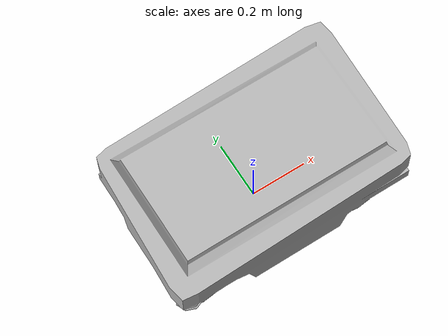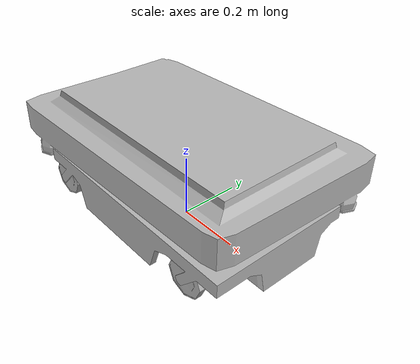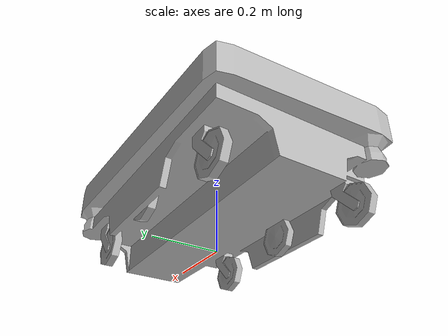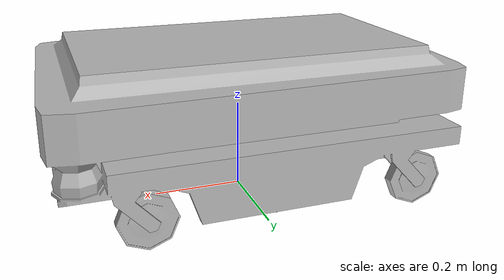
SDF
<?xml version="1.0"?>

<sdf version="1.6">
  <model name='MiR100'>

    <!-- TODO(MXG): Find actual physical properties for MiR instead of duplicating Sesto's -->
    <plugin name="slotcar" filename="libslotcar.so">

      <!-- Forward / Backward -->

      <!-- Official Sesto limit: 0.7 -->
      <nominal_drive_speed>
        0.7
      </nominal_drive_speed>

      <nominal_drive_acceleration>
        0.5
      </nominal_drive_acceleration>

      <!-- Theoretical no-slip limit with current suspension: 0.8 -->
      <!-- Official Sesto limit: 0.5 -->
      <max_drive_acceleration>
        0.75
      </max_drive_acceleration>

      <!-- Turning -->

      <!-- Official Sesto limit: 0.3 -->
      <nominal_turn_speed>
        0.3
      </nominal_turn_speed>

      <nominal_turn_acceleration>
        1.5
      </nominal_turn_acceleration>

      <!-- Theoretical no-slip limit with current suspension: 2.166666... -->
      <!-- Official Sesto limit: 0.25 -->
      <max_turn_acceleration>
        2.0
      </max_turn_acceleration>

      <!-- Stop distance and radius to allow MIR to pass through LF001 -->
      <stop_distance>0.70</stop_distance>
      <stop_radius>0.70</stop_radius>
    </plugin>

    <link name="body">
      <pose>0 0 0 0 0 0</pose>

      <inertial>
        <pose>0 0 0.43294142 0 0 0</pose>
        <mass>244.816489</mass>
        <inertia>
          <ixx>29.0695006</ixx>
          <iyy>26.0429852</iyy>
          <izz>23.0523441</izz>
        </inertia>
      </inertial>

      <visual name="body">
        <geometry>
          <mesh><uri>model://MiR100/meshes/body.obj</uri></mesh>
        </geometry>
      </visual>
      <collision name="body">
        <geometry>
          <mesh><uri>model://MiR100/meshes/body.obj</uri></mesh>
        </geometry>
      </collision>

      <visual name="WheelLeftFront">
        <pose>0.262 0.220 0.061 0 0 0</pose>
        <geometry>
          <mesh>
            <uri>model://MiR100/meshes/WheelMain.obj</uri>
          </mesh>
        </geometry>
      </visual>
      <collision name="front_caster_left">
        <pose>.27 .25 0.05 0 0 0</pose>
        <geometry>
          <sphere><radius>0.05</radius></sphere>
        </geometry>
        <surface>
          <friction>
            <torsional>
              <coefficient>0.0</coefficient>
            </torsional>
            <ode>
              <mu>0.0</mu>
              <mu2>0.0</mu2>
            </ode>
            <bullet>
              <friction>0.0</friction>
              <friction2>0.0</friction2>
              <rolling_friction>0.0</rolling_friction>
            </bullet>
          </friction>
        </surface>
      </collision>

      <visual name="WheelLeftBack">
        <pose>-0.334 0.220 0.061 0 0 0</pose>
        <geometry>
          <mesh>
            <uri>model://MiR100/meshes/WheelMain.obj</uri>
          </mesh>
        </geometry>
      </visual>
      <collision name="back_caster_left">
        <pose>-.34 .25 0.05 0 0 0</pose>
        <geometry>
          <sphere><radius>0.05</radius></sphere>
        </geometry>
        <surface>
          <friction>
            <torsional>
              <coefficient>0.0</coefficient>
            </torsional>
            <ode>
              <mu>0.0</mu>
              <mu2>0.0</mu2>
            </ode>
            <bullet>
              <friction>0.0</friction>
              <friction2>0.0</friction2>
              <rolling_friction>0.0</rolling_friction>
            </bullet>
          </friction>
        </surface>
      </collision>

      <visual name="WheelRightFront">
        <pose>0.262 -0.217 0.061 0 0 0</pose>
        <geometry>
          <mesh>
            <uri>model://MiR100/meshes/WheelMain.obj</uri>
          </mesh>
        </geometry>
      </visual>
      <collision name="front_caster_right">
        <pose>.27 -.25 0.05 0 0 0</pose>
        <geometry>
          <sphere><radius>0.05</radius></sphere>
        </geometry>
        <surface>
          <friction>
            <torsional>
              <coefficient>0.0</coefficient>
            </torsional>
            <ode>
              <mu>0.0</mu>
              <mu2>0.0</mu2>
            </ode>
            <bullet>
              <friction>0.0</friction>
              <friction2>0.0</friction2>
              <rolling_friction>0.0</rolling_friction>
            </bullet>
          </friction>
        </surface>
      </collision>

      <visual name="WheelRightBack">
        <pose>-0.334 -0.217 0.061 0 0 0</pose>
        <geometry>
          <mesh>
            <uri>model://MiR100/meshes/WheelMain.obj</uri>
          </mesh>
        </geometry>
      </visual>
      <collision name="back_caster_right">
        <pose>-.34 -.25 0.05 0 0 0</pose>
        <geometry>
          <sphere><radius>0.05</radius></sphere>
        </geometry>
        <surface>
          <friction>
            <torsional>
              <coefficient>0.0</coefficient>
            </torsional>
            <ode>
              <mu>0.0</mu>
              <mu2>0.0</mu2>
            </ode>
            <bullet>
              <friction>0.0</friction>
              <friction2>0.0</friction2>
              <rolling_friction>0.0</rolling_friction>
            </bullet>
          </friction>
        </surface>
      </collision>
    </link>

    <link name="suspension_tire_left">
      <!-- This is a dummy link that's used to connect a suspension (prismatic
           joint) to the tire axis (revolute joint) -->
      <pose>0 0.26 0.10 0 0 0</pose>
      <inertial>
        <mass>1.00</mass>
        <inertia>
          <ixx>1.00</ixx>
          <iyy>1.00</iyy>
          <izz>1.00</izz>
        </inertia>
      </inertial>
    </link>

    <joint name="joint_suspension_tire_left" type="prismatic">
      <parent>body</parent>
      <child>suspension_tire_left</child>
      <axis>
        <xyz>0 0 1</xyz>
        <dynamics>
          <damping>500</damping>
          <spring_reference>-0.09</spring_reference>
          <spring_stiffness>2000</spring_stiffness>
        </dynamics>
      </axis>
      <physics>
        <ode>
          <implicit_spring_damper>true</implicit_spring_damper>
        </ode>
      </physics>
    </joint>

    <link name="tire_left">
      <pose>0 0.26 0.10 0 0 0</pose>

      <inertial>
        <pose>0 0 0 0 0 0</pose>
        <mass>5.0</mass>
        <inertia>
          <ixx>0.757897446874</ixx>
          <iyy>1.302975553365</iyy>
          <izz>0.757897446874</izz>
        </inertia>
      </inertial>

      <visual name="WheelSideLeft">
        <pose>0.0 -0.032 0.0 0 0 0</pose>
        <geometry>
          <mesh>
            <uri>model://MiR100/meshes/WheelSide.obj</uri>
          </mesh>
        </geometry>
      </visual>
      <collision name="tire_left">
        <geometry>
          <sphere><radius>0.06137</radius></sphere>
        </geometry>
        <surface>
          <contact>
            <ode>
              <kp>10000000.0</kp>
              <kd>1.0</kd>
            </ode>
          </contact>
        </surface>
      </collision>
    </link>

    <joint name="joint_tire_left" type="revolute">
      <parent>suspension_tire_left</parent>
      <child>tire_left</child>
      <axis>
        <xyz>0 1 0</xyz>
      </axis>
    </joint>

    <link name="suspension_tire_right">
      <!-- This is a dummy link that's used to connect a suspension (prismatic
           joint) to the tire axis (revolute joint) -->
      <pose>0 -0.26 0.10 0 0 0</pose>
      <inertial>
        <mass>1.00</mass>
        <inertia>
          <ixx>1.00</ixx>
          <iyy>1.00</iyy>
          <izz>1.00</izz>
        </inertia>
      </inertial>
    </link>

    <joint name="joint_suspension_tire_right" type="prismatic">
      <parent>body</parent>
      <child>suspension_tire_right</child>
      <axis>
        <xyz>0 0 1</xyz>
        <dynamics>
          <damping>500</damping>
          <spring_reference>-0.09</spring_reference>
          <spring_stiffness>2000</spring_stiffness>
        </dynamics>
      </axis>
      <physics>
        <ode>
          <implicit_spring_damper>true</implicit_spring_damper>
        </ode>
      </physics>
    </joint>

    <link name="tire_right">
      <pose>0 -0.26 0.10 0 0 0</pose>

      <inertial>
        <pose>0 0 0 0 0 0</pose>
        <mass>5.0</mass>
        <inertia>
          <ixx>0.757897446874</ixx>
          <iyy>1.302975553365</iyy>
          <izz>0.757897446874</izz>
        </inertia>
      </inertial>

      <visual name="WheelSideRight">
        <pose>0.0 0.032 0.0 0 0 0</pose>
        <geometry>
          <mesh>
            <uri>model://MiR100/meshes/WheelSide.obj</uri>
          </mesh>
        </geometry>
      </visual>
      <collision name="tire_right">
        <geometry>
          <sphere><radius>0.06137</radius></sphere>
        </geometry>
        <surface>
          <contact>
            <ode>
              <kp>10000000.0</kp>
              <kd>1.0</kd>
            </ode>
          </contact>
        </surface>
      </collision>
    </link>

    <joint name="joint_tire_right" type="revolute">
      <parent>suspension_tire_right</parent>
      <child>tire_right</child>
      <axis>
        <xyz>0 1 0</xyz>
      </axis>
    </joint>

  </model>
</sdf>
